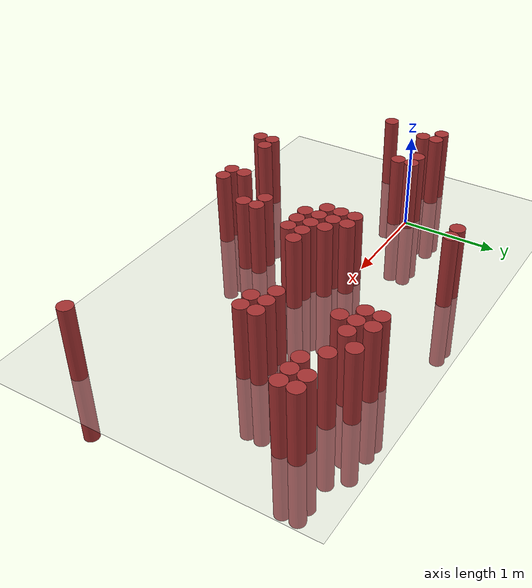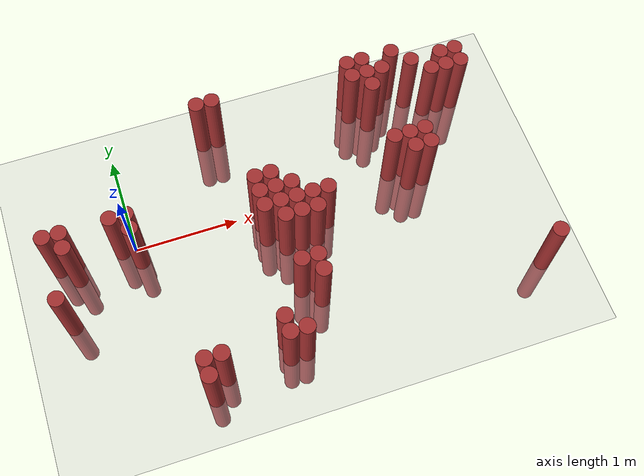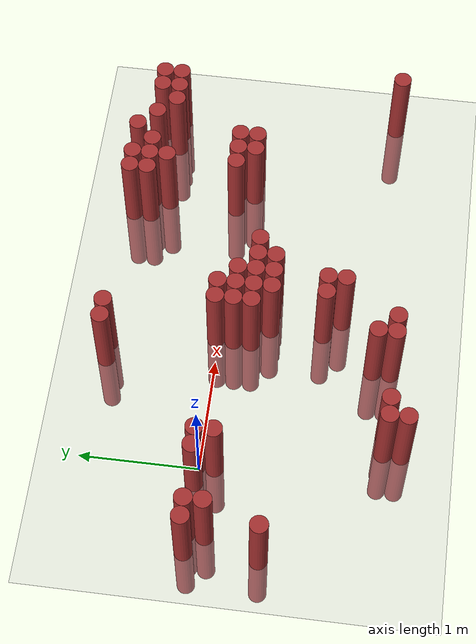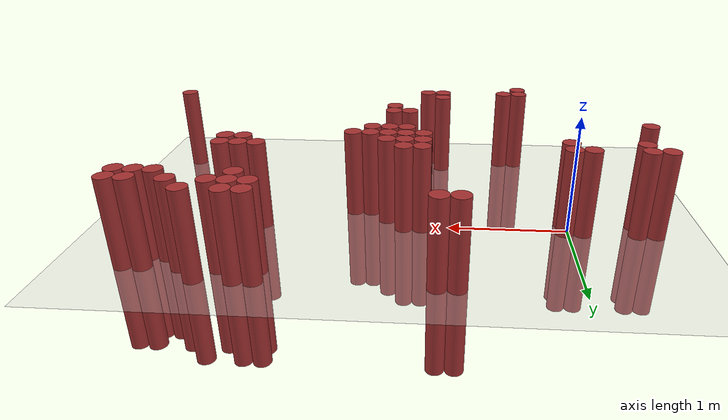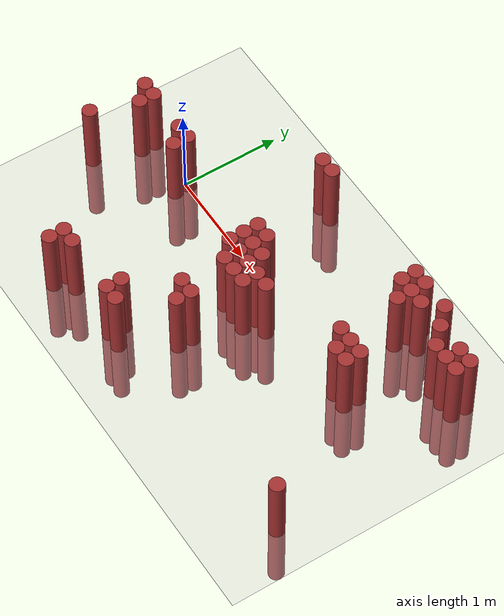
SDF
<sdf version="1.6">
 <world name="default">
  <model name="ground_plane">
   <static>1</static>
   <link name="link">
    <collision name="collision">
     <geometry><plane><normal>0 0 1</normal><size>100 100</size></plane></geometry>
     <surface><friction><ode><mu>100</mu><mu2>50</mu2></ode></friction></surface>
    </collision>
    <visual name="visual">
     <cast_shadows>0</cast_shadows>
     <geometry><plane><normal>0 0 1</normal><size>100 100</size></plane></geometry>
     <material>
      <script><uri>file://media/materials/scripts/gazebo.material</uri><name>Gazebo/Grey</name></script>
     </material>
    </visual>
   </link>
  </model>
  <model name="unit_cylinder_316">
   <static>1</static>
   <pose>-0.725000 -0.575000 0.000000 0.000000 0.000000 0.000000</pose>
   <link name="link">
    <inertial>
     <mass>1</mass>
     <inertia><ixx>0.145833</ixx><ixy>0</ixy><ixz>0</ixz><iyy>0.145833</iyy><iyz>0</iyz><izz>0.125</izz></inertia>
    </inertial>
    <collision name="collision">
     <geometry><cylinder><radius>0.075000</radius><length>1.5</length></cylinder></geometry>
    </collision>
    <visual name="visual">
     <geometry><cylinder><radius>0.075000</radius><length>1.5</length></cylinder></geometry>
     <material>
      <ambient>0.648000 0.192000 0.192000 1</ambient>
      <diffuse>0.648000 0.192000 0.192000 1</diffuse>
     </material>
     <material>
      <script><name>Gazebo/Grey</name><uri>file://media/materials/scripts/gazebo.material</uri></script>
     </material>
    </visual>
   </link>
  </model>
  <model name="unit_cylinder_317">
   <static>1</static>
   <pose>-0.725000 0.025000 0.000000 0.000000 0.000000 0.000000</pose>
   <link name="link">
    <inertial>
     <mass>1</mass>
     <inertia><ixx>0.145833</ixx><ixy>0</ixy><ixz>0</ixz><iyy>0.145833</iyy><iyz>0</iyz><izz>0.125</izz></inertia>
    </inertial>
    <collision name="collision">
     <geometry><cylinder><radius>0.075000</radius><length>1.5</length></cylinder></geometry>
    </collision>
    <visual name="visual">
     <geometry><cylinder><radius>0.075000</radius><length>1.5</length></cylinder></geometry>
     <material>
      <ambient>0.648000 0.192000 0.192000 1</ambient>
      <diffuse>0.648000 0.192000 0.192000 1</diffuse>
     </material>
     <material>
      <script><name>Gazebo/Grey</name><uri>file://media/materials/scripts/gazebo.material</uri></script>
     </material>
    </visual>
   </link>
  </model>
  <model name="unit_cylinder_321">
   <static>1</static>
   <pose>-0.575000 -0.125000 0.000000 0.000000 0.000000 0.000000</pose>
   <link name="link">
    <inertial>
     <mass>1</mass>
     <inertia><ixx>0.145833</ixx><ixy>0</ixy><ixz>0</ixz><iyy>0.145833</iyy><iyz>0</iyz><izz>0.125</izz></inertia>
    </inertial>
    <collision name="collision">
     <geometry><cylinder><radius>0.075000</radius><length>1.5</length></cylinder></geometry>
    </collision>
    <visual name="visual">
     <geometry><cylinder><radius>0.075000</radius><length>1.5</length></cylinder></geometry>
     <material>
      <ambient>0.648000 0.192000 0.192000 1</ambient>
      <diffuse>0.648000 0.192000 0.192000 1</diffuse>
     </material>
     <material>
      <script><name>Gazebo/Grey</name><uri>file://media/materials/scripts/gazebo.material</uri></script>
     </material>
    </visual>
   </link>
  </model>
  <model name="unit_cylinder_322">
   <static>1</static>
   <pose>-0.575000 0.025000 0.000000 0.000000 0.000000 0.000000</pose>
   <link name="link">
    <inertial>
     <mass>1</mass>
     <inertia><ixx>0.145833</ixx><ixy>0</ixy><ixz>0</ixz><iyy>0.145833</iyy><iyz>0</iyz><izz>0.125</izz></inertia>
    </inertial>
    <collision name="collision">
     <geometry><cylinder><radius>0.075000</radius><length>1.5</length></cylinder></geometry>
    </collision>
    <visual name="visual">
     <geometry><cylinder><radius>0.075000</radius><length>1.5</length></cylinder></geometry>
     <material>
      <ambient>0.648000 0.192000 0.192000 1</ambient>
      <diffuse>0.648000 0.192000 0.192000 1</diffuse>
     </material>
     <material>
      <script><name>Gazebo/Grey</name><uri>file://media/materials/scripts/gazebo.material</uri></script>
     </material>
    </visual>
   </link>
  </model>
  <model name="unit_cylinder_334">
   <static>1</static>
   <pose>-0.125000 0.025000 0.000000 0.000000 0.000000 0.000000</pose>
   <link name="link">
    <inertial>
     <mass>1</mass>
     <inertia><ixx>0.145833</ixx><ixy>0</ixy><ixz>0</ixz><iyy>0.145833</iyy><iyz>0</iyz><izz>0.125</izz></inertia>
    </inertial>
    <collision name="collision">
     <geometry><cylinder><radius>0.075000</radius><length>1.5</length></cylinder></geometry>
    </collision>
    <visual name="visual">
     <geometry><cylinder><radius>0.075000</radius><length>1.5</length></cylinder></geometry>
     <material>
      <ambient>0.648000 0.192000 0.192000 1</ambient>
      <diffuse>0.648000 0.192000 0.192000 1</diffuse>
     </material>
     <material>
      <script><name>Gazebo/Grey</name><uri>file://media/materials/scripts/gazebo.material</uri></script>
     </material>
    </visual>
   </link>
  </model>
  <model name="unit_cylinder_337">
   <static>1</static>
   <pose>0.025000 -0.125000 0.000000 0.000000 0.000000 0.000000</pose>
   <link name="link">
    <inertial>
     <mass>1</mass>
     <inertia><ixx>0.145833</ixx><ixy>0</ixy><ixz>0</ixz><iyy>0.145833</iyy><iyz>0</iyz><izz>0.125</izz></inertia>
    </inertial>
    <collision name="collision">
     <geometry><cylinder><radius>0.075000</radius><length>1.5</length></cylinder></geometry>
    </collision>
    <visual name="visual">
     <geometry><cylinder><radius>0.075000</radius><length>1.5</length></cylinder></geometry>
     <material>
      <ambient>0.648000 0.192000 0.192000 1</ambient>
      <diffuse>0.648000 0.192000 0.192000 1</diffuse>
     </material>
     <material>
      <script><name>Gazebo/Grey</name><uri>file://media/materials/scripts/gazebo.material</uri></script>
     </material>
    </visual>
   </link>
  </model>
  <model name="unit_cylinder_338">
   <static>1</static>
   <pose>0.025000 0.025000 0.000000 0.000000 0.000000 0.000000</pose>
   <link name="link">
    <inertial>
     <mass>1</mass>
     <inertia><ixx>0.145833</ixx><ixy>0</ixy><ixz>0</ixz><iyy>0.145833</iyy><iyz>0</iyz><izz>0.125</izz></inertia>
    </inertial>
    <collision name="collision">
     <geometry><cylinder><radius>0.075000</radius><length>1.5</length></cylinder></geometry>
    </collision>
    <visual name="visual">
     <geometry><cylinder><radius>0.075000</radius><length>1.5</length></cylinder></geometry>
     <material>
      <ambient>0.648000 0.192000 0.192000 1</ambient>
      <diffuse>0.648000 0.192000 0.192000 1</diffuse>
     </material>
     <material>
      <script><name>Gazebo/Grey</name><uri>file://media/materials/scripts/gazebo.material</uri></script>
     </material>
    </visual>
   </link>
  </model>
  <model name="unit_cylinder_343">
   <static>1</static>
   <pose>0.325000 -1.625000 0.000000 0.000000 0.000000 0.000000</pose>
   <link name="link">
    <inertial>
     <mass>1</mass>
     <inertia><ixx>0.145833</ixx><ixy>0</ixy><ixz>0</ixz><iyy>0.145833</iyy><iyz>0</iyz><izz>0.125</izz></inertia>
    </inertial>
    <collision name="collision">
     <geometry><cylinder><radius>0.075000</radius><length>1.5</length></cylinder></geometry>
    </collision>
    <visual name="visual">
     <geometry><cylinder><radius>0.075000</radius><length>1.5</length></cylinder></geometry>
     <material>
      <ambient>0.648000 0.192000 0.192000 1</ambient>
      <diffuse>0.648000 0.192000 0.192000 1</diffuse>
     </material>
     <material>
      <script><name>Gazebo/Grey</name><uri>file://media/materials/scripts/gazebo.material</uri></script>
     </material>
    </visual>
   </link>
  </model>
  <model name="unit_cylinder_344">
   <static>1</static>
   <pose>0.325000 -1.475000 0.000000 0.000000 0.000000 0.000000</pose>
   <link name="link">
    <inertial>
     <mass>1</mass>
     <inertia><ixx>0.145833</ixx><ixy>0</ixy><ixz>0</ixz><iyy>0.145833</iyy><iyz>0</iyz><izz>0.125</izz></inertia>
    </inertial>
    <collision name="collision">
     <geometry><cylinder><radius>0.075000</radius><length>1.5</length></cylinder></geometry>
    </collision>
    <visual name="visual">
     <geometry><cylinder><radius>0.075000</radius><length>1.5</length></cylinder></geometry>
     <material>
      <ambient>0.648000 0.192000 0.192000 1</ambient>
      <diffuse>0.648000 0.192000 0.192000 1</diffuse>
     </material>
     <material>
      <script><name>Gazebo/Grey</name><uri>file://media/materials/scripts/gazebo.material</uri></script>
     </material>
    </visual>
   </link>
  </model>
  <model name="unit_cylinder_346">
   <static>1</static>
   <pose>0.475000 -1.475000 0.000000 0.000000 0.000000 0.000000</pose>
   <link name="link">
    <inertial>
     <mass>1</mass>
     <inertia><ixx>0.145833</ixx><ixy>0</ixy><ixz>0</ixz><iyy>0.145833</iyy><iyz>0</iyz><izz>0.125</izz></inertia>
    </inertial>
    <collision name="collision">
     <geometry><cylinder><radius>0.075000</radius><length>1.5</length></cylinder></geometry>
    </collision>
    <visual name="visual">
     <geometry><cylinder><radius>0.075000</radius><length>1.5</length></cylinder></geometry>
     <material>
      <ambient>0.648000 0.192000 0.192000 1</ambient>
      <diffuse>0.648000 0.192000 0.192000 1</diffuse>
     </material>
     <material>
      <script><name>Gazebo/Grey</name><uri>file://media/materials/scripts/gazebo.material</uri></script>
     </material>
    </visual>
   </link>
  </model>
  <model name="unit_cylinder_347">
   <static>1</static>
   <pose>0.925000 0.925000 0.000000 0.000000 0.000000 0.000000</pose>
   <link name="link">
    <inertial>
     <mass>1</mass>
     <inertia><ixx>0.145833</ixx><ixy>0</ixy><ixz>0</ixz><iyy>0.145833</iyy><iyz>0</iyz><izz>0.125</izz></inertia>
    </inertial>
    <collision name="collision">
     <geometry><cylinder><radius>0.075000</radius><length>1.5</length></cylinder></geometry>
    </collision>
    <visual name="visual">
     <geometry><cylinder><radius>0.075000</radius><length>1.5</length></cylinder></geometry>
     <material>
      <ambient>0.648000 0.192000 0.192000 1</ambient>
      <diffuse>0.648000 0.192000 0.192000 1</diffuse>
     </material>
     <material>
      <script><name>Gazebo/Grey</name><uri>file://media/materials/scripts/gazebo.material</uri></script>
     </material>
    </visual>
   </link>
  </model>
  <model name="unit_cylinder_353">
   <static>1</static>
   <pose>1.075000 -1.475000 0.000000 0.000000 0.000000 0.000000</pose>
   <link name="link">
    <inertial>
     <mass>1</mass>
     <inertia><ixx>0.145833</ixx><ixy>0</ixy><ixz>0</ixz><iyy>0.145833</iyy><iyz>0</iyz><izz>0.125</izz></inertia>
    </inertial>
    <collision name="collision">
     <geometry><cylinder><radius>0.075000</radius><length>1.5</length></cylinder></geometry>
    </collision>
    <visual name="visual">
     <geometry><cylinder><radius>0.075000</radius><length>1.5</length></cylinder></geometry>
     <material>
      <ambient>0.648000 0.192000 0.192000 1</ambient>
      <diffuse>0.648000 0.192000 0.192000 1</diffuse>
     </material>
     <material>
      <script><name>Gazebo/Grey</name><uri>file://media/materials/scripts/gazebo.material</uri></script>
     </material>
    </visual>
   </link>
  </model>
  <model name="unit_cylinder_354">
   <static>1</static>
   <pose>1.075000 -1.325000 0.000000 0.000000 0.000000 0.000000</pose>
   <link name="link">
    <inertial>
     <mass>1</mass>
     <inertia><ixx>0.145833</ixx><ixy>0</ixy><ixz>0</ixz><iyy>0.145833</iyy><iyz>0</iyz><izz>0.125</izz></inertia>
    </inertial>
    <collision name="collision">
     <geometry><cylinder><radius>0.075000</radius><length>1.5</length></cylinder></geometry>
    </collision>
    <visual name="visual">
     <geometry><cylinder><radius>0.075000</radius><length>1.5</length></cylinder></geometry>
     <material>
      <ambient>0.648000 0.192000 0.192000 1</ambient>
      <diffuse>0.648000 0.192000 0.192000 1</diffuse>
     </material>
     <material>
      <script><name>Gazebo/Grey</name><uri>file://media/materials/scripts/gazebo.material</uri></script>
     </material>
    </visual>
   </link>
  </model>
  <model name="unit_cylinder_355">
   <static>1</static>
   <pose>1.075000 0.925000 0.000000 0.000000 0.000000 0.000000</pose>
   <link name="link">
    <inertial>
     <mass>1</mass>
     <inertia><ixx>0.145833</ixx><ixy>0</ixy><ixz>0</ixz><iyy>0.145833</iyy><iyz>0</iyz><izz>0.125</izz></inertia>
    </inertial>
    <collision name="collision">
     <geometry><cylinder><radius>0.075000</radius><length>1.5</length></cylinder></geometry>
    </collision>
    <visual name="visual">
     <geometry><cylinder><radius>0.075000</radius><length>1.5</length></cylinder></geometry>
     <material>
      <ambient>0.648000 0.192000 0.192000 1</ambient>
      <diffuse>0.648000 0.192000 0.192000 1</diffuse>
     </material>
     <material>
      <script><name>Gazebo/Grey</name><uri>file://media/materials/scripts/gazebo.material</uri></script>
     </material>
    </visual>
   </link>
  </model>
  <model name="unit_cylinder_362">
   <static>1</static>
   <pose>1.225000 -1.475000 0.000000 0.000000 0.000000 0.000000</pose>
   <link name="link">
    <inertial>
     <mass>1</mass>
     <inertia><ixx>0.145833</ixx><ixy>0</ixy><ixz>0</ixz><iyy>0.145833</iyy><iyz>0</iyz><izz>0.125</izz></inertia>
    </inertial>
    <collision name="collision">
     <geometry><cylinder><radius>0.075000</radius><length>1.5</length></cylinder></geometry>
    </collision>
    <visual name="visual">
     <geometry><cylinder><radius>0.075000</radius><length>1.5</length></cylinder></geometry>
     <material>
      <ambient>0.648000 0.192000 0.192000 1</ambient>
      <diffuse>0.648000 0.192000 0.192000 1</diffuse>
     </material>
     <material>
      <script><name>Gazebo/Grey</name><uri>file://media/materials/scripts/gazebo.material</uri></script>
     </material>
    </visual>
   </link>
  </model>
  <model name="unit_cylinder_363">
   <static>1</static>
   <pose>1.225000 -0.275000 0.000000 0.000000 0.000000 0.000000</pose>
   <link name="link">
    <inertial>
     <mass>1</mass>
     <inertia><ixx>0.145833</ixx><ixy>0</ixy><ixz>0</ixz><iyy>0.145833</iyy><iyz>0</iyz><izz>0.125</izz></inertia>
    </inertial>
    <collision name="collision">
     <geometry><cylinder><radius>0.075000</radius><length>1.5</length></cylinder></geometry>
    </collision>
    <visual name="visual">
     <geometry><cylinder><radius>0.075000</radius><length>1.5</length></cylinder></geometry>
     <material>
      <ambient>0.648000 0.192000 0.192000 1</ambient>
      <diffuse>0.648000 0.192000 0.192000 1</diffuse>
     </material>
     <material>
      <script><name>Gazebo/Grey</name><uri>file://media/materials/scripts/gazebo.material</uri></script>
     </material>
    </visual>
   </link>
  </model>
  <model name="unit_cylinder_364">
   <static>1</static>
   <pose>1.225000 -0.125000 0.000000 0.000000 0.000000 0.000000</pose>
   <link name="link">
    <inertial>
     <mass>1</mass>
     <inertia><ixx>0.145833</ixx><ixy>0</ixy><ixz>0</ixz><iyy>0.145833</iyy><iyz>0</iyz><izz>0.125</izz></inertia>
    </inertial>
    <collision name="collision">
     <geometry><cylinder><radius>0.075000</radius><length>1.5</length></cylinder></geometry>
    </collision>
    <visual name="visual">
     <geometry><cylinder><radius>0.075000</radius><length>1.5</length></cylinder></geometry>
     <material>
      <ambient>0.648000 0.192000 0.192000 1</ambient>
      <diffuse>0.648000 0.192000 0.192000 1</diffuse>
     </material>
     <material>
      <script><name>Gazebo/Grey</name><uri>file://media/materials/scripts/gazebo.material</uri></script>
     </material>
    </visual>
   </link>
  </model>
  <model name="unit_cylinder_365">
   <static>1</static>
   <pose>1.225000 0.025000 0.000000 0.000000 0.000000 0.000000</pose>
   <link name="link">
    <inertial>
     <mass>1</mass>
     <inertia><ixx>0.145833</ixx><ixy>0</ixy><ixz>0</ixz><iyy>0.145833</iyy><iyz>0</iyz><izz>0.125</izz></inertia>
    </inertial>
    <collision name="collision">
     <geometry><cylinder><radius>0.075000</radius><length>1.5</length></cylinder></geometry>
    </collision>
    <visual name="visual">
     <geometry><cylinder><radius>0.075000</radius><length>1.5</length></cylinder></geometry>
     <material>
      <ambient>0.648000 0.192000 0.192000 1</ambient>
      <diffuse>0.648000 0.192000 0.192000 1</diffuse>
     </material>
     <material>
      <script><name>Gazebo/Grey</name><uri>file://media/materials/scripts/gazebo.material</uri></script>
     </material>
    </visual>
   </link>
  </model>
  <model name="unit_cylinder_371">
   <static>1</static>
   <pose>1.375000 -0.875000 0.000000 0.000000 0.000000 0.000000</pose>
   <link name="link">
    <inertial>
     <mass>1</mass>
     <inertia><ixx>0.145833</ixx><ixy>0</ixy><ixz>0</ixz><iyy>0.145833</iyy><iyz>0</iyz><izz>0.125</izz></inertia>
    </inertial>
    <collision name="collision">
     <geometry><cylinder><radius>0.075000</radius><length>1.5</length></cylinder></geometry>
    </collision>
    <visual name="visual">
     <geometry><cylinder><radius>0.075000</radius><length>1.5</length></cylinder></geometry>
     <material>
      <ambient>0.648000 0.192000 0.192000 1</ambient>
      <diffuse>0.648000 0.192000 0.192000 1</diffuse>
     </material>
     <material>
      <script><name>Gazebo/Grey</name><uri>file://media/materials/scripts/gazebo.material</uri></script>
     </material>
    </visual>
   </link>
  </model>
  <model name="unit_cylinder_372">
   <static>1</static>
   <pose>1.375000 -0.425000 0.000000 0.000000 0.000000 0.000000</pose>
   <link name="link">
    <inertial>
     <mass>1</mass>
     <inertia><ixx>0.145833</ixx><ixy>0</ixy><ixz>0</ixz><iyy>0.145833</iyy><iyz>0</iyz><izz>0.125</izz></inertia>
    </inertial>
    <collision name="collision">
     <geometry><cylinder><radius>0.075000</radius><length>1.5</length></cylinder></geometry>
    </collision>
    <visual name="visual">
     <geometry><cylinder><radius>0.075000</radius><length>1.5</length></cylinder></geometry>
     <material>
      <ambient>0.648000 0.192000 0.192000 1</ambient>
      <diffuse>0.648000 0.192000 0.192000 1</diffuse>
     </material>
     <material>
      <script><name>Gazebo/Grey</name><uri>file://media/materials/scripts/gazebo.material</uri></script>
     </material>
    </visual>
   </link>
  </model>
  <model name="unit_cylinder_373">
   <static>1</static>
   <pose>1.375000 -0.275000 0.000000 0.000000 0.000000 0.000000</pose>
   <link name="link">
    <inertial>
     <mass>1</mass>
     <inertia><ixx>0.145833</ixx><ixy>0</ixy><ixz>0</ixz><iyy>0.145833</iyy><iyz>0</iyz><izz>0.125</izz></inertia>
    </inertial>
    <collision name="collision">
     <geometry><cylinder><radius>0.075000</radius><length>1.5</length></cylinder></geometry>
    </collision>
    <visual name="visual">
     <geometry><cylinder><radius>0.075000</radius><length>1.5</length></cylinder></geometry>
     <material>
      <ambient>0.648000 0.192000 0.192000 1</ambient>
      <diffuse>0.648000 0.192000 0.192000 1</diffuse>
     </material>
     <material>
      <script><name>Gazebo/Grey</name><uri>file://media/materials/scripts/gazebo.material</uri></script>
     </material>
    </visual>
   </link>
  </model>
  <model name="unit_cylinder_374">
   <static>1</static>
   <pose>1.375000 -0.125000 0.000000 0.000000 0.000000 0.000000</pose>
   <link name="link">
    <inertial>
     <mass>1</mass>
     <inertia><ixx>0.145833</ixx><ixy>0</ixy><ixz>0</ixz><iyy>0.145833</iyy><iyz>0</iyz><izz>0.125</izz></inertia>
    </inertial>
    <collision name="collision">
     <geometry><cylinder><radius>0.075000</radius><length>1.5</length></cylinder></geometry>
    </collision>
    <visual name="visual">
     <geometry><cylinder><radius>0.075000</radius><length>1.5</length></cylinder></geometry>
     <material>
      <ambient>0.648000 0.192000 0.192000 1</ambient>
      <diffuse>0.648000 0.192000 0.192000 1</diffuse>
     </material>
     <material>
      <script><name>Gazebo/Grey</name><uri>file://media/materials/scripts/gazebo.material</uri></script>
     </material>
    </visual>
   </link>
  </model>
  <model name="unit_cylinder_375">
   <static>1</static>
   <pose>1.375000 0.025000 0.000000 0.000000 0.000000 0.000000</pose>
   <link name="link">
    <inertial>
     <mass>1</mass>
     <inertia><ixx>0.145833</ixx><ixy>0</ixy><ixz>0</ixz><iyy>0.145833</iyy><iyz>0</iyz><izz>0.125</izz></inertia>
    </inertial>
    <collision name="collision">
     <geometry><cylinder><radius>0.075000</radius><length>1.5</length></cylinder></geometry>
    </collision>
    <visual name="visual">
     <geometry><cylinder><radius>0.075000</radius><length>1.5</length></cylinder></geometry>
     <material>
      <ambient>0.648000 0.192000 0.192000 1</ambient>
      <diffuse>0.648000 0.192000 0.192000 1</diffuse>
     </material>
     <material>
      <script><name>Gazebo/Grey</name><uri>file://media/materials/scripts/gazebo.material</uri></script>
     </material>
    </visual>
   </link>
  </model>
  <model name="unit_cylinder_378">
   <static>1</static>
   <pose>1.525000 -1.025000 0.000000 0.000000 0.000000 0.000000</pose>
   <link name="link">
    <inertial>
     <mass>1</mass>
     <inertia><ixx>0.145833</ixx><ixy>0</ixy><ixz>0</ixz><iyy>0.145833</iyy><iyz>0</iyz><izz>0.125</izz></inertia>
    </inertial>
    <collision name="collision">
     <geometry><cylinder><radius>0.075000</radius><length>1.5</length></cylinder></geometry>
    </collision>
    <visual name="visual">
     <geometry><cylinder><radius>0.075000</radius><length>1.5</length></cylinder></geometry>
     <material>
      <ambient>0.648000 0.192000 0.192000 1</ambient>
      <diffuse>0.648000 0.192000 0.192000 1</diffuse>
     </material>
     <material>
      <script><name>Gazebo/Grey</name><uri>file://media/materials/scripts/gazebo.material</uri></script>
     </material>
    </visual>
   </link>
  </model>
  <model name="unit_cylinder_379">
   <static>1</static>
   <pose>1.525000 -0.875000 0.000000 0.000000 0.000000 0.000000</pose>
   <link name="link">
    <inertial>
     <mass>1</mass>
     <inertia><ixx>0.145833</ixx><ixy>0</ixy><ixz>0</ixz><iyy>0.145833</iyy><iyz>0</iyz><izz>0.125</izz></inertia>
    </inertial>
    <collision name="collision">
     <geometry><cylinder><radius>0.075000</radius><length>1.5</length></cylinder></geometry>
    </collision>
    <visual name="visual">
     <geometry><cylinder><radius>0.075000</radius><length>1.5</length></cylinder></geometry>
     <material>
      <ambient>0.648000 0.192000 0.192000 1</ambient>
      <diffuse>0.648000 0.192000 0.192000 1</diffuse>
     </material>
     <material>
      <script><name>Gazebo/Grey</name><uri>file://media/materials/scripts/gazebo.material</uri></script>
     </material>
    </visual>
   </link>
  </model>
  <model name="unit_cylinder_380">
   <static>1</static>
   <pose>1.525000 -0.425000 0.000000 0.000000 0.000000 0.000000</pose>
   <link name="link">
    <inertial>
     <mass>1</mass>
     <inertia><ixx>0.145833</ixx><ixy>0</ixy><ixz>0</ixz><iyy>0.145833</iyy><iyz>0</iyz><izz>0.125</izz></inertia>
    </inertial>
    <collision name="collision">
     <geometry><cylinder><radius>0.075000</radius><length>1.5</length></cylinder></geometry>
    </collision>
    <visual name="visual">
     <geometry><cylinder><radius>0.075000</radius><length>1.5</length></cylinder></geometry>
     <material>
      <ambient>0.648000 0.192000 0.192000 1</ambient>
      <diffuse>0.648000 0.192000 0.192000 1</diffuse>
     </material>
     <material>
      <script><name>Gazebo/Grey</name><uri>file://media/materials/scripts/gazebo.material</uri></script>
     </material>
    </visual>
   </link>
  </model>
  <model name="unit_cylinder_381">
   <static>1</static>
   <pose>1.525000 -0.275000 0.000000 0.000000 0.000000 0.000000</pose>
   <link name="link">
    <inertial>
     <mass>1</mass>
     <inertia><ixx>0.145833</ixx><ixy>0</ixy><ixz>0</ixz><iyy>0.145833</iyy><iyz>0</iyz><izz>0.125</izz></inertia>
    </inertial>
    <collision name="collision">
     <geometry><cylinder><radius>0.075000</radius><length>1.5</length></cylinder></geometry>
    </collision>
    <visual name="visual">
     <geometry><cylinder><radius>0.075000</radius><length>1.5</length></cylinder></geometry>
     <material>
      <ambient>0.648000 0.192000 0.192000 1</ambient>
      <diffuse>0.648000 0.192000 0.192000 1</diffuse>
     </material>
     <material>
      <script><name>Gazebo/Grey</name><uri>file://media/materials/scripts/gazebo.material</uri></script>
     </material>
    </visual>
   </link>
  </model>
  <model name="unit_cylinder_382">
   <static>1</static>
   <pose>1.525000 -0.125000 0.000000 0.000000 0.000000 0.000000</pose>
   <link name="link">
    <inertial>
     <mass>1</mass>
     <inertia><ixx>0.145833</ixx><ixy>0</ixy><ixz>0</ixz><iyy>0.145833</iyy><iyz>0</iyz><izz>0.125</izz></inertia>
    </inertial>
    <collision name="collision">
     <geometry><cylinder><radius>0.075000</radius><length>1.5</length></cylinder></geometry>
    </collision>
    <visual name="visual">
     <geometry><cylinder><radius>0.075000</radius><length>1.5</length></cylinder></geometry>
     <material>
      <ambient>0.648000 0.192000 0.192000 1</ambient>
      <diffuse>0.648000 0.192000 0.192000 1</diffuse>
     </material>
     <material>
      <script><name>Gazebo/Grey</name><uri>file://media/materials/scripts/gazebo.material</uri></script>
     </material>
    </visual>
   </link>
  </model>
  <model name="unit_cylinder_384">
   <static>1</static>
   <pose>1.675000 -0.425000 0.000000 0.000000 0.000000 0.000000</pose>
   <link name="link">
    <inertial>
     <mass>1</mass>
     <inertia><ixx>0.145833</ixx><ixy>0</ixy><ixz>0</ixz><iyy>0.145833</iyy><iyz>0</iyz><izz>0.125</izz></inertia>
    </inertial>
    <collision name="collision">
     <geometry><cylinder><radius>0.075000</radius><length>1.5</length></cylinder></geometry>
    </collision>
    <visual name="visual">
     <geometry><cylinder><radius>0.075000</radius><length>1.5</length></cylinder></geometry>
     <material>
      <ambient>0.648000 0.192000 0.192000 1</ambient>
      <diffuse>0.648000 0.192000 0.192000 1</diffuse>
     </material>
     <material>
      <script><name>Gazebo/Grey</name><uri>file://media/materials/scripts/gazebo.material</uri></script>
     </material>
    </visual>
   </link>
  </model>
  <model name="unit_cylinder_385">
   <static>1</static>
   <pose>1.675000 -0.275000 0.000000 0.000000 0.000000 0.000000</pose>
   <link name="link">
    <inertial>
     <mass>1</mass>
     <inertia><ixx>0.145833</ixx><ixy>0</ixy><ixz>0</ixz><iyy>0.145833</iyy><iyz>0</iyz><izz>0.125</izz></inertia>
    </inertial>
    <collision name="collision">
     <geometry><cylinder><radius>0.075000</radius><length>1.5</length></cylinder></geometry>
    </collision>
    <visual name="visual">
     <geometry><cylinder><radius>0.075000</radius><length>1.5</length></cylinder></geometry>
     <material>
      <ambient>0.648000 0.192000 0.192000 1</ambient>
      <diffuse>0.648000 0.192000 0.192000 1</diffuse>
     </material>
     <material>
      <script><name>Gazebo/Grey</name><uri>file://media/materials/scripts/gazebo.material</uri></script>
     </material>
    </visual>
   </link>
  </model>
  <model name="unit_cylinder_386">
   <static>1</static>
   <pose>1.825000 -0.275000 0.000000 0.000000 0.000000 0.000000</pose>
   <link name="link">
    <inertial>
     <mass>1</mass>
     <inertia><ixx>0.145833</ixx><ixy>0</ixy><ixz>0</ixz><iyy>0.145833</iyy><iyz>0</iyz><izz>0.125</izz></inertia>
    </inertial>
    <collision name="collision">
     <geometry><cylinder><radius>0.075000</radius><length>1.5</length></cylinder></geometry>
    </collision>
    <visual name="visual">
     <geometry><cylinder><radius>0.075000</radius><length>1.5</length></cylinder></geometry>
     <material>
      <ambient>0.648000 0.192000 0.192000 1</ambient>
      <diffuse>0.648000 0.192000 0.192000 1</diffuse>
     </material>
     <material>
      <script><name>Gazebo/Grey</name><uri>file://media/materials/scripts/gazebo.material</uri></script>
     </material>
    </visual>
   </link>
  </model>
  <model name="unit_cylinder_391">
   <static>1</static>
   <pose>2.425000 0.775000 0.000000 0.000000 0.000000 0.000000</pose>
   <link name="link">
    <inertial>
     <mass>1</mass>
     <inertia><ixx>0.145833</ixx><ixy>0</ixy><ixz>0</ixz><iyy>0.145833</iyy><iyz>0</iyz><izz>0.125</izz></inertia>
    </inertial>
    <collision name="collision">
     <geometry><cylinder><radius>0.075000</radius><length>1.5</length></cylinder></geometry>
    </collision>
    <visual name="visual">
     <geometry><cylinder><radius>0.075000</radius><length>1.5</length></cylinder></geometry>
     <material>
      <ambient>0.648000 0.192000 0.192000 1</ambient>
      <diffuse>0.648000 0.192000 0.192000 1</diffuse>
     </material>
     <material>
      <script><name>Gazebo/Grey</name><uri>file://media/materials/scripts/gazebo.material</uri></script>
     </material>
    </visual>
   </link>
  </model>
  <model name="unit_cylinder_392">
   <static>1</static>
   <pose>2.425000 0.925000 0.000000 0.000000 0.000000 0.000000</pose>
   <link name="link">
    <inertial>
     <mass>1</mass>
     <inertia><ixx>0.145833</ixx><ixy>0</ixy><ixz>0</ixz><iyy>0.145833</iyy><iyz>0</iyz><izz>0.125</izz></inertia>
    </inertial>
    <collision name="collision">
     <geometry><cylinder><radius>0.075000</radius><length>1.5</length></cylinder></geometry>
    </collision>
    <visual name="visual">
     <geometry><cylinder><radius>0.075000</radius><length>1.5</length></cylinder></geometry>
     <material>
      <ambient>0.648000 0.192000 0.192000 1</ambient>
      <diffuse>0.648000 0.192000 0.192000 1</diffuse>
     </material>
     <material>
      <script><name>Gazebo/Grey</name><uri>file://media/materials/scripts/gazebo.material</uri></script>
     </material>
    </visual>
   </link>
  </model>
  <model name="unit_cylinder_393">
   <static>1</static>
   <pose>2.575000 0.025000 0.000000 0.000000 0.000000 0.000000</pose>
   <link name="link">
    <inertial>
     <mass>1</mass>
     <inertia><ixx>0.145833</ixx><ixy>0</ixy><ixz>0</ixz><iyy>0.145833</iyy><iyz>0</iyz><izz>0.125</izz></inertia>
    </inertial>
    <collision name="collision">
     <geometry><cylinder><radius>0.075000</radius><length>1.5</length></cylinder></geometry>
    </collision>
    <visual name="visual">
     <geometry><cylinder><radius>0.075000</radius><length>1.5</length></cylinder></geometry>
     <material>
      <ambient>0.648000 0.192000 0.192000 1</ambient>
      <diffuse>0.648000 0.192000 0.192000 1</diffuse>
     </material>
     <material>
      <script><name>Gazebo/Grey</name><uri>file://media/materials/scripts/gazebo.material</uri></script>
     </material>
    </visual>
   </link>
  </model>
  <model name="unit_cylinder_394">
   <static>1</static>
   <pose>2.575000 0.625000 0.000000 0.000000 0.000000 0.000000</pose>
   <link name="link">
    <inertial>
     <mass>1</mass>
     <inertia><ixx>0.145833</ixx><ixy>0</ixy><ixz>0</ixz><iyy>0.145833</iyy><iyz>0</iyz><izz>0.125</izz></inertia>
    </inertial>
    <collision name="collision">
     <geometry><cylinder><radius>0.075000</radius><length>1.5</length></cylinder></geometry>
    </collision>
    <visual name="visual">
     <geometry><cylinder><radius>0.075000</radius><length>1.5</length></cylinder></geometry>
     <material>
      <ambient>0.648000 0.192000 0.192000 1</ambient>
      <diffuse>0.648000 0.192000 0.192000 1</diffuse>
     </material>
     <material>
      <script><name>Gazebo/Grey</name><uri>file://media/materials/scripts/gazebo.material</uri></script>
     </material>
    </visual>
   </link>
  </model>
  <model name="unit_cylinder_395">
   <static>1</static>
   <pose>2.575000 0.775000 0.000000 0.000000 0.000000 0.000000</pose>
   <link name="link">
    <inertial>
     <mass>1</mass>
     <inertia><ixx>0.145833</ixx><ixy>0</ixy><ixz>0</ixz><iyy>0.145833</iyy><iyz>0</iyz><izz>0.125</izz></inertia>
    </inertial>
    <collision name="collision">
     <geometry><cylinder><radius>0.075000</radius><length>1.5</length></cylinder></geometry>
    </collision>
    <visual name="visual">
     <geometry><cylinder><radius>0.075000</radius><length>1.5</length></cylinder></geometry>
     <material>
      <ambient>0.648000 0.192000 0.192000 1</ambient>
      <diffuse>0.648000 0.192000 0.192000 1</diffuse>
     </material>
     <material>
      <script><name>Gazebo/Grey</name><uri>file://media/materials/scripts/gazebo.material</uri></script>
     </material>
    </visual>
   </link>
  </model>
  <model name="unit_cylinder_396">
   <static>1</static>
   <pose>2.575000 0.925000 0.000000 0.000000 0.000000 0.000000</pose>
   <link name="link">
    <inertial>
     <mass>1</mass>
     <inertia><ixx>0.145833</ixx><ixy>0</ixy><ixz>0</ixz><iyy>0.145833</iyy><iyz>0</iyz><izz>0.125</izz></inertia>
    </inertial>
    <collision name="collision">
     <geometry><cylinder><radius>0.075000</radius><length>1.5</length></cylinder></geometry>
    </collision>
    <visual name="visual">
     <geometry><cylinder><radius>0.075000</radius><length>1.5</length></cylinder></geometry>
     <material>
      <ambient>0.648000 0.192000 0.192000 1</ambient>
      <diffuse>0.648000 0.192000 0.192000 1</diffuse>
     </material>
     <material>
      <script><name>Gazebo/Grey</name><uri>file://media/materials/scripts/gazebo.material</uri></script>
     </material>
    </visual>
   </link>
  </model>
  <model name="unit_cylinder_397">
   <static>1</static>
   <pose>2.725000 -0.125000 0.000000 0.000000 0.000000 0.000000</pose>
   <link name="link">
    <inertial>
     <mass>1</mass>
     <inertia><ixx>0.145833</ixx><ixy>0</ixy><ixz>0</ixz><iyy>0.145833</iyy><iyz>0</iyz><izz>0.125</izz></inertia>
    </inertial>
    <collision name="collision">
     <geometry><cylinder><radius>0.075000</radius><length>1.5</length></cylinder></geometry>
    </collision>
    <visual name="visual">
     <geometry><cylinder><radius>0.075000</radius><length>1.5</length></cylinder></geometry>
     <material>
      <ambient>0.648000 0.192000 0.192000 1</ambient>
      <diffuse>0.648000 0.192000 0.192000 1</diffuse>
     </material>
     <material>
      <script><name>Gazebo/Grey</name><uri>file://media/materials/scripts/gazebo.material</uri></script>
     </material>
    </visual>
   </link>
  </model>
  <model name="unit_cylinder_398">
   <static>1</static>
   <pose>2.725000 0.025000 0.000000 0.000000 0.000000 0.000000</pose>
   <link name="link">
    <inertial>
     <mass>1</mass>
     <inertia><ixx>0.145833</ixx><ixy>0</ixy><ixz>0</ixz><iyy>0.145833</iyy><iyz>0</iyz><izz>0.125</izz></inertia>
    </inertial>
    <collision name="collision">
     <geometry><cylinder><radius>0.075000</radius><length>1.5</length></cylinder></geometry>
    </collision>
    <visual name="visual">
     <geometry><cylinder><radius>0.075000</radius><length>1.5</length></cylinder></geometry>
     <material>
      <ambient>0.648000 0.192000 0.192000 1</ambient>
      <diffuse>0.648000 0.192000 0.192000 1</diffuse>
     </material>
     <material>
      <script><name>Gazebo/Grey</name><uri>file://media/materials/scripts/gazebo.material</uri></script>
     </material>
    </visual>
   </link>
  </model>
  <model name="unit_cylinder_399">
   <static>1</static>
   <pose>2.725000 0.775000 0.000000 0.000000 0.000000 0.000000</pose>
   <link name="link">
    <inertial>
     <mass>1</mass>
     <inertia><ixx>0.145833</ixx><ixy>0</ixy><ixz>0</ixz><iyy>0.145833</iyy><iyz>0</iyz><izz>0.125</izz></inertia>
    </inertial>
    <collision name="collision">
     <geometry><cylinder><radius>0.075000</radius><length>1.5</length></cylinder></geometry>
    </collision>
    <visual name="visual">
     <geometry><cylinder><radius>0.075000</radius><length>1.5</length></cylinder></geometry>
     <material>
      <ambient>0.648000 0.192000 0.192000 1</ambient>
      <diffuse>0.648000 0.192000 0.192000 1</diffuse>
     </material>
     <material>
      <script><name>Gazebo/Grey</name><uri>file://media/materials/scripts/gazebo.material</uri></script>
     </material>
    </visual>
   </link>
  </model>
  <model name="unit_cylinder_401">
   <static>1</static>
   <pose>2.875000 -0.125000 0.000000 0.000000 0.000000 0.000000</pose>
   <link name="link">
    <inertial>
     <mass>1</mass>
     <inertia><ixx>0.145833</ixx><ixy>0</ixy><ixz>0</ixz><iyy>0.145833</iyy><iyz>0</iyz><izz>0.125</izz></inertia>
    </inertial>
    <collision name="collision">
     <geometry><cylinder><radius>0.075000</radius><length>1.5</length></cylinder></geometry>
    </collision>
    <visual name="visual">
     <geometry><cylinder><radius>0.075000</radius><length>1.5</length></cylinder></geometry>
     <material>
      <ambient>0.648000 0.192000 0.192000 1</ambient>
      <diffuse>0.648000 0.192000 0.192000 1</diffuse>
     </material>
     <material>
      <script><name>Gazebo/Grey</name><uri>file://media/materials/scripts/gazebo.material</uri></script>
     </material>
    </visual>
   </link>
  </model>
  <model name="unit_cylinder_402">
   <static>1</static>
   <pose>2.875000 0.025000 0.000000 0.000000 0.000000 0.000000</pose>
   <link name="link">
    <inertial>
     <mass>1</mass>
     <inertia><ixx>0.145833</ixx><ixy>0</ixy><ixz>0</ixz><iyy>0.145833</iyy><iyz>0</iyz><izz>0.125</izz></inertia>
    </inertial>
    <collision name="collision">
     <geometry><cylinder><radius>0.075000</radius><length>1.5</length></cylinder></geometry>
    </collision>
    <visual name="visual">
     <geometry><cylinder><radius>0.075000</radius><length>1.5</length></cylinder></geometry>
     <material>
      <ambient>0.648000 0.192000 0.192000 1</ambient>
      <diffuse>0.648000 0.192000 0.192000 1</diffuse>
     </material>
     <material>
      <script><name>Gazebo/Grey</name><uri>file://media/materials/scripts/gazebo.material</uri></script>
     </material>
    </visual>
   </link>
  </model>
  <model name="unit_cylinder_403">
   <static>1</static>
   <pose>2.875000 0.925000 0.000000 0.000000 0.000000 0.000000</pose>
   <link name="link">
    <inertial>
     <mass>1</mass>
     <inertia><ixx>0.145833</ixx><ixy>0</ixy><ixz>0</ixz><iyy>0.145833</iyy><iyz>0</iyz><izz>0.125</izz></inertia>
    </inertial>
    <collision name="collision">
     <geometry><cylinder><radius>0.075000</radius><length>1.5</length></cylinder></geometry>
    </collision>
    <visual name="visual">
     <geometry><cylinder><radius>0.075000</radius><length>1.5</length></cylinder></geometry>
     <material>
      <ambient>0.648000 0.192000 0.192000 1</ambient>
      <diffuse>0.648000 0.192000 0.192000 1</diffuse>
     </material>
     <material>
      <script><name>Gazebo/Grey</name><uri>file://media/materials/scripts/gazebo.material</uri></script>
     </material>
    </visual>
   </link>
  </model>
  <model name="unit_cylinder_407">
   <static>1</static>
   <pose>3.025000 0.775000 0.000000 0.000000 0.000000 0.000000</pose>
   <link name="link">
    <inertial>
     <mass>1</mass>
     <inertia><ixx>0.145833</ixx><ixy>0</ixy><ixz>0</ixz><iyy>0.145833</iyy><iyz>0</iyz><izz>0.125</izz></inertia>
    </inertial>
    <collision name="collision">
     <geometry><cylinder><radius>0.075000</radius><length>1.5</length></cylinder></geometry>
    </collision>
    <visual name="visual">
     <geometry><cylinder><radius>0.075000</radius><length>1.5</length></cylinder></geometry>
     <material>
      <ambient>0.648000 0.192000 0.192000 1</ambient>
      <diffuse>0.648000 0.192000 0.192000 1</diffuse>
     </material>
     <material>
      <script><name>Gazebo/Grey</name><uri>file://media/materials/scripts/gazebo.material</uri></script>
     </material>
    </visual>
   </link>
  </model>
  <model name="unit_cylinder_411">
   <static>1</static>
   <pose>3.175000 0.625000 0.000000 0.000000 0.000000 0.000000</pose>
   <link name="link">
    <inertial>
     <mass>1</mass>
     <inertia><ixx>0.145833</ixx><ixy>0</ixy><ixz>0</ixz><iyy>0.145833</iyy><iyz>0</iyz><izz>0.125</izz></inertia>
    </inertial>
    <collision name="collision">
     <geometry><cylinder><radius>0.075000</radius><length>1.5</length></cylinder></geometry>
    </collision>
    <visual name="visual">
     <geometry><cylinder><radius>0.075000</radius><length>1.5</length></cylinder></geometry>
     <material>
      <ambient>0.648000 0.192000 0.192000 1</ambient>
      <diffuse>0.648000 0.192000 0.192000 1</diffuse>
     </material>
     <material>
      <script><name>Gazebo/Grey</name><uri>file://media/materials/scripts/gazebo.material</uri></script>
     </material>
    </visual>
   </link>
  </model>
  <model name="unit_cylinder_414">
   <static>1</static>
   <pose>3.325000 0.625000 0.000000 0.000000 0.000000 0.000000</pose>
   <link name="link">
    <inertial>
     <mass>1</mass>
     <inertia><ixx>0.145833</ixx><ixy>0</ixy><ixz>0</ixz><iyy>0.145833</iyy><iyz>0</iyz><izz>0.125</izz></inertia>
    </inertial>
    <collision name="collision">
     <geometry><cylinder><radius>0.075000</radius><length>1.5</length></cylinder></geometry>
    </collision>
    <visual name="visual">
     <geometry><cylinder><radius>0.075000</radius><length>1.5</length></cylinder></geometry>
     <material>
      <ambient>0.648000 0.192000 0.192000 1</ambient>
      <diffuse>0.648000 0.192000 0.192000 1</diffuse>
     </material>
     <material>
      <script><name>Gazebo/Grey</name><uri>file://media/materials/scripts/gazebo.material</uri></script>
     </material>
    </visual>
   </link>
  </model>
  <model name="unit_cylinder_415">
   <static>1</static>
   <pose>3.325000 0.775000 0.000000 0.000000 0.000000 0.000000</pose>
   <link name="link">
    <inertial>
     <mass>1</mass>
     <inertia><ixx>0.145833</ixx><ixy>0</ixy><ixz>0</ixz><iyy>0.145833</iyy><iyz>0</iyz><izz>0.125</izz></inertia>
    </inertial>
    <collision name="collision">
     <geometry><cylinder><radius>0.075000</radius><length>1.5</length></cylinder></geometry>
    </collision>
    <visual name="visual">
     <geometry><cylinder><radius>0.075000</radius><length>1.5</length></cylinder></geometry>
     <material>
      <ambient>0.648000 0.192000 0.192000 1</ambient>
      <diffuse>0.648000 0.192000 0.192000 1</diffuse>
     </material>
     <material>
      <script><name>Gazebo/Grey</name><uri>file://media/materials/scripts/gazebo.material</uri></script>
     </material>
    </visual>
   </link>
  </model>
  <model name="unit_cylinder_420">
   <static>1</static>
   <pose>3.475000 0.625000 0.000000 0.000000 0.000000 0.000000</pose>
   <link name="link">
    <inertial>
     <mass>1</mass>
     <inertia><ixx>0.145833</ixx><ixy>0</ixy><ixz>0</ixz><iyy>0.145833</iyy><iyz>0</iyz><izz>0.125</izz></inertia>
    </inertial>
    <collision name="collision">
     <geometry><cylinder><radius>0.075000</radius><length>1.5</length></cylinder></geometry>
    </collision>
    <visual name="visual">
     <geometry><cylinder><radius>0.075000</radius><length>1.5</length></cylinder></geometry>
     <material>
      <ambient>0.648000 0.192000 0.192000 1</ambient>
      <diffuse>0.648000 0.192000 0.192000 1</diffuse>
     </material>
     <material>
      <script><name>Gazebo/Grey</name><uri>file://media/materials/scripts/gazebo.material</uri></script>
     </material>
    </visual>
   </link>
  </model>
  <model name="unit_cylinder_421">
   <static>1</static>
   <pose>3.475000 0.775000 0.000000 0.000000 0.000000 0.000000</pose>
   <link name="link">
    <inertial>
     <mass>1</mass>
     <inertia><ixx>0.145833</ixx><ixy>0</ixy><ixz>0</ixz><iyy>0.145833</iyy><iyz>0</iyz><izz>0.125</izz></inertia>
    </inertial>
    <collision name="collision">
     <geometry><cylinder><radius>0.075000</radius><length>1.5</length></cylinder></geometry>
    </collision>
    <visual name="visual">
     <geometry><cylinder><radius>0.075000</radius><length>1.5</length></cylinder></geometry>
     <material>
      <ambient>0.648000 0.192000 0.192000 1</ambient>
      <diffuse>0.648000 0.192000 0.192000 1</diffuse>
     </material>
     <material>
      <script><name>Gazebo/Grey</name><uri>file://media/materials/scripts/gazebo.material</uri></script>
     </material>
    </visual>
   </link>
  </model>
  <model name="unit_cylinder_424">
   <static>1</static>
   <pose>3.625000 -1.325000 0.000000 0.000000 0.000000 0.000000</pose>
   <link name="link">
    <inertial>
     <mass>1</mass>
     <inertia><ixx>0.145833</ixx><ixy>0</ixy><ixz>0</ixz><iyy>0.145833</iyy><iyz>0</iyz><izz>0.125</izz></inertia>
    </inertial>
    <collision name="collision">
     <geometry><cylinder><radius>0.075000</radius><length>1.5</length></cylinder></geometry>
    </collision>
    <visual name="visual">
     <geometry><cylinder><radius>0.075000</radius><length>1.5</length></cylinder></geometry>
     <material>
      <ambient>0.648000 0.192000 0.192000 1</ambient>
      <diffuse>0.648000 0.192000 0.192000 1</diffuse>
     </material>
     <material>
      <script><name>Gazebo/Grey</name><uri>file://media/materials/scripts/gazebo.material</uri></script>
     </material>
    </visual>
   </link>
  </model>
 </world>
</sdf>
